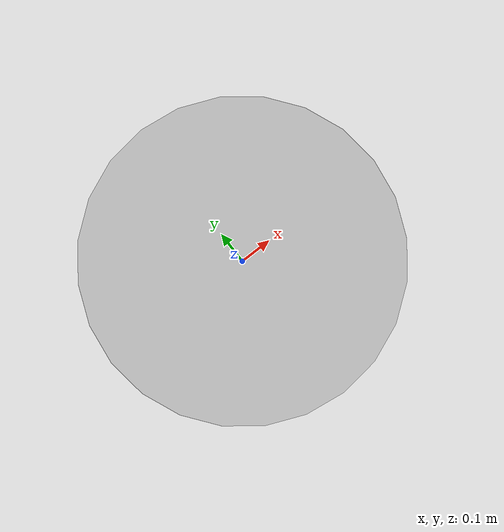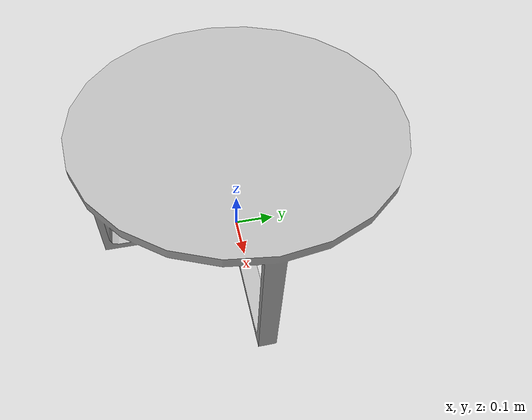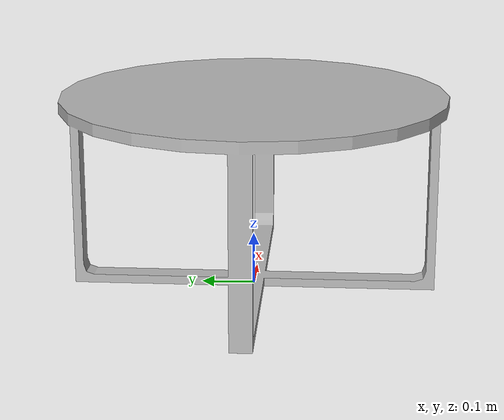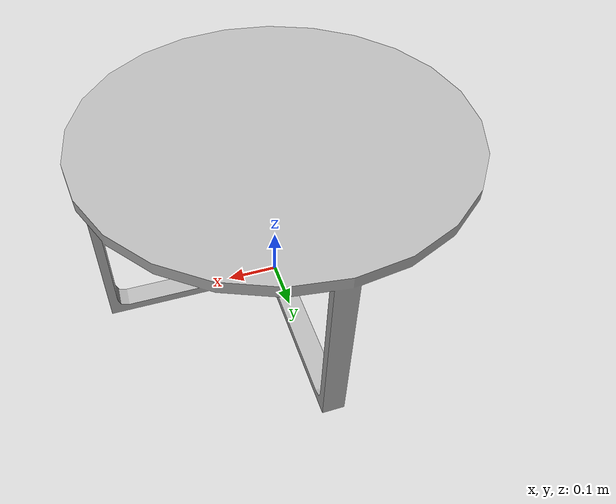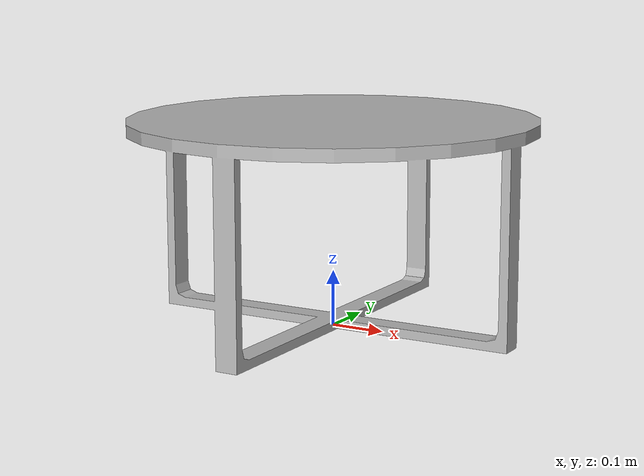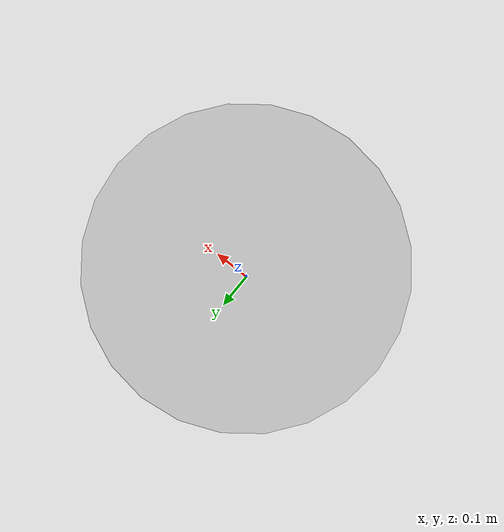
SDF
<?xml version="1.0"?>
<sdf version="1.6">
    <model name="CoffeeTable">
        <link name="body">
            <pose>0 0 0 0 0 0</pose>
            <visual name="visual">
                <geometry>
                    <mesh>
                        <uri>meshes/CoffeeTable.obj</uri>
                        <scale>0.00817 0.00817 0.00817</scale>
                    </mesh>
                </geometry>
            </visual>
            <collision name="collision">
                <geometry>
                    <mesh>
                        <uri>meshes/CoffeeTable.obj</uri>
                        <scale>0.00817 0.00817 0.00817</scale>
                    </mesh>
                </geometry>
            </collision>
        </link>
    </model>
</sdf>
